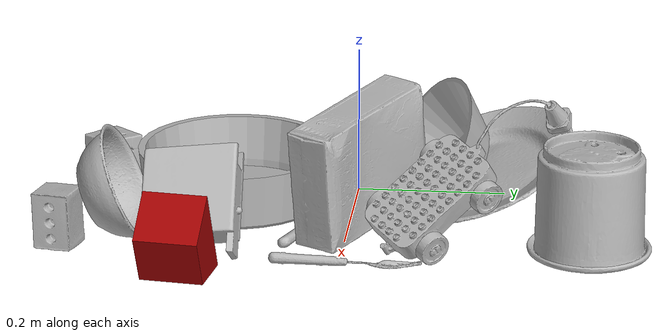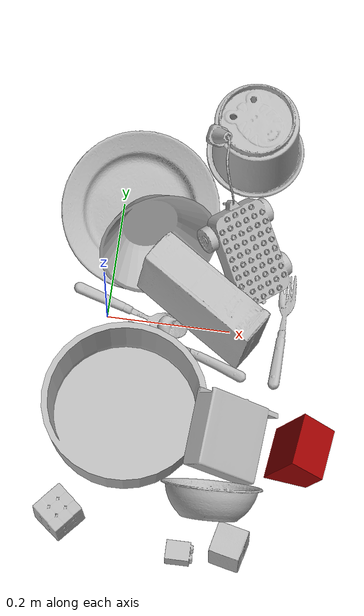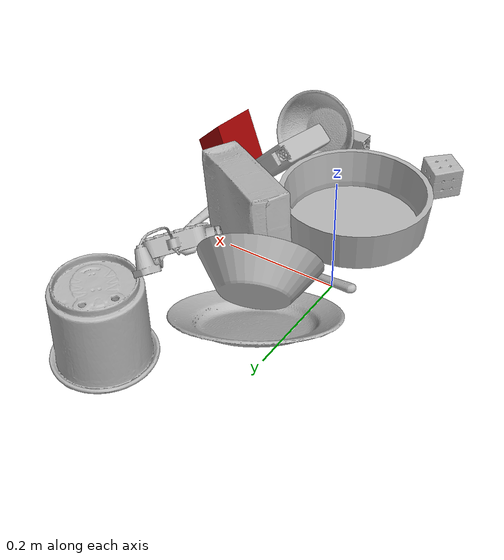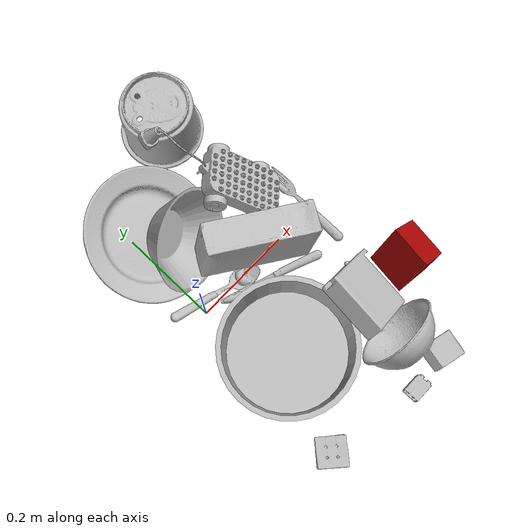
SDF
<sdf version="1.4">
  <world name="default">
    <light name="light1" type="point">
      <pose>0 0 1 0 0 0</pose>
      <diffuse>3 3 3 1</diffuse>
      <specular>3 3 3 1</specular>
    </light>
    <light name="light2" type="point">
      <pose>0 0.5 2 0 0 0</pose>
      <diffuse>1 1 1 1</diffuse>
      <specular>1 1 1 1</specular>
    </light>
    <light name="light3" type="point">
      <pose>0 0.5 2 0 0 0</pose>
      <diffuse>3 3 3 1</diffuse>
      <specular>3 3 3 1</specular>
    </light>
    <scene>
      <ambient>0.7 0.7 0.7</ambient>
    </scene>
    <model name="plate1">
      <link name="link_plate1">
        <collision name="default">
          <geometry>
            <mesh>
              <uri>model://pan_tefal/collision_meshes/collision.obj</uri>
              <scale>1.0 1.0 1.0</scale>
            </mesh>
          </geometry>
          <surface>
            <friction>
              <ode>
                <mu>0.5</mu>
                <mu2>0.5</mu2>
              </ode>
            </friction>
          <contact>
        <ode>
            <max_vel>0</max_vel>
            <min_depth>0.0001</min_depth>
            <kp>1e8</kp>
        </ode>
    </contact></surface>
        </collision>
        <visual name="default">
          <geometry>
            <mesh>
              <uri>model://pan_tefal/visual_meshes/visual.dae</uri>
              <scale>1.0 1.0 1.0</scale>
            </mesh>
          </geometry>
        </visual>
        <inertial>
          <mass>0.7575002908706665</mass>
          <pose>-0.00018002181604970247 3.278869189671241e-05 -0.00851493701338768 0.0008190213215647545 -0.0003301469994364688 -0.3318472895374236</pose>
          <inertia>
            <ixx>0.0052289874</ixx>
            <iyy>0.0052627004</iyy>
            <izz>0.009625561</izz>
            <ixy>0</ixy>
            <ixz>0</ixz>
            <iyz>0</iyz>
          </inertia>
        </inertial>
      </link>
      <pose>0.05217326059937477 -0.16270890831947327 0.03804999962449074 -5.309817482792166e-09 1.6356493300923307e-08 0.8514206963162857</pose>
    </model>
    <model name="plate2">
      <link name="link_plate2">
        <collision name="default">
          <geometry>
            <mesh>
              <uri>model://plate/collision_meshes/collision.obj</uri>
              <scale>1.0 1.0 1.0</scale>
            </mesh>
          </geometry>
          <surface>
            <friction>
              <ode>
                <mu>0.5</mu>
                <mu2>0.5</mu2>
              </ode>
            </friction>
          <contact>
        <ode>
            <max_vel>0</max_vel>
            <min_depth>0.0001</min_depth>
            <kp>1e8</kp>
        </ode>
    </contact></surface>
        </collision>
        <visual name="default">
          <geometry>
            <mesh>
              <uri>model://plate/visual_meshes/visual.dae</uri>
              <scale>1.0 1.0 1.0</scale>
            </mesh>
          </geometry>
        </visual>
        <inertial>
          <mass>0.24305373430252075</mass>
          <pose>-0.0006044657784514129 0.0002782582014333457 -0.0010561988456174731 0.0022187349237576767 -0.0032255124479001144 0.4526250186623527</pose>
          <inertia>
            <ixx>0.00113701</ixx>
            <iyy>0.0011261352</iyy>
            <izz>0.0022238225</izz>
            <ixy>0</ixy>
            <ixz>0</ixz>
            <iyz>0</iyz>
          </inertia>
        </inertial>
      </link>
      <pose>0.02974129095673561 0.17403334379196167 0.04556697979569435 0.050879418475349714 0.4210557248935261 -0.8875806964664745</pose>
    </model>
    <model name="bowl1">
      <link name="link_bowl1">
        <collision name="default">
          <geometry>
            <mesh>
              <uri>model://bowl/collision_meshes/collision.obj</uri>
              <scale>1.0 1.0 1.0</scale>
            </mesh>
          </geometry>
          <surface>
            <friction>
              <ode>
                <mu>0.5</mu>
                <mu2>0.5</mu2>
              </ode>
            </friction>
          <contact>
        <ode>
            <max_vel>0</max_vel>
            <min_depth>0.0001</min_depth>
            <kp>1e8</kp>
        </ode>
    </contact></surface>
        </collision>
        <visual name="default">
          <geometry>
            <mesh>
              <uri>model://bowl/visual_meshes/visual.dae</uri>
              <scale>1.0 1.0 1.0</scale>
            </mesh>
          </geometry>
        </visual>
        <inertial>
          <mass>0.08028676360845566</mass>
          <pose>0.00020445045083761215 -0.0010302026057615876 -0.0008042661938816309 -0.015764207515600946 0.014546645366850262 0.7140316236369888</pose>
          <inertia>
            <ixx>0.00018442512</ixx>
            <iyy>0.00018030431</iyy>
            <izz>0.0003102665</izz>
            <ixy>0</ixy>
            <ixz>0</ixz>
            <iyz>0</iyz>
          </inertia>
        </inertial>
      </link>
      <pose>0.2087073028087616 -0.306907594203949 0.06587545573711395 1.1933310759361166 0.09289970019568039 3.1316935837720568</pose>
    </model>
    <model name="bowl2">
      <link name="link_bowl2">
        <collision name="default">
          <geometry>
            <mesh>
              <uri>model://bowl_a/collision_meshes/collision.obj</uri>
              <scale>1.0 1.0 1.0</scale>
            </mesh>
          </geometry>
          <surface>
            <friction>
              <ode>
                <mu>0.5</mu>
                <mu2>0.5</mu2>
              </ode>
            </friction>
          <contact>
        <ode>
            <max_vel>0</max_vel>
            <min_depth>0.0001</min_depth>
            <kp>1e8</kp>
        </ode>
    </contact></surface>
        </collision>
        <visual name="default">
          <geometry>
            <mesh>
              <uri>model://bowl_a/visual_meshes/visual.dae</uri>
              <scale>1.0 1.0 1.0</scale>
            </mesh>
          </geometry>
        </visual>
        <inertial>
          <mass>0.2016693353652954</mass>
          <pose>0.000278673687716946 4.731108856503852e-05 -0.0013765295734629035 -0.0009805301894988984 -0.0010938186520021772 -0.19123883274053055</pose>
          <inertia>
            <ixx>0.00057416206</ixx>
            <iyy>0.000577687</iyy>
            <izz>0.0010211696</izz>
            <ixy>0</ixy>
            <ixz>0</ixz>
            <iyz>0</iyz>
          </inertia>
        </inertial>
      </link>
      <pose>0.06023215875029564 0.1243751123547554 0.077445849776268 0.5603810926956745 -0.9631572818458112 1.3346761593209187</pose>
    </model>
    <model name="silverware1">
      <link name="link_silverware1">
        <collision name="default">
          <geometry>
            <mesh>
              <uri>model://spoon/collision_meshes/collision.obj</uri>
              <scale>1.0 1.0 1.0</scale>
            </mesh>
          </geometry>
          <surface>
            <friction>
              <ode>
                <mu>0.5</mu>
                <mu2>0.5</mu2>
              </ode>
            </friction>
          <contact>
        <ode>
            <max_vel>0</max_vel>
            <min_depth>0.0001</min_depth>
            <kp>1e8</kp>
        </ode>
    </contact></surface>
        </collision>
        <visual name="default">
          <geometry>
            <mesh>
              <uri>model://spoon/visual_meshes/visual.dae</uri>
              <scale>1.0 1.0 1.0</scale>
            </mesh>
          </geometry>
        </visual>
        <inertial>
          <mass>0.023438503965735435</mass>
          <pose>-0.005526317749172449 -0.0016034176805987954 -0.000727164966519922 0.03521671071703309 -0.03906584129558259 0.006150610048623938</pose>
          <inertia>
            <ixx>1.3036873e-06</ixx>
            <iyy>8.918272e-05</iyy>
            <izz>8.982564e-05</izz>
            <ixy>0</ixy>
            <ixz>0</ixz>
            <iyz>0</iyz>
          </inertia>
        </inertial>
      </link>
      <pose>0.0376242995262146 0.011502615176141262 0.020970584824681282 0.062137731270596894 0.2481839470236354 -0.22801962767351502</pose>
    </model>
    <model name="box1">
      <link name="link_box1">
        <collision name="default">
          <geometry>
            <mesh>
              <uri>model://cracker_box/collision_meshes/collision.obj</uri>
              <scale>1.0 1.0 1.0</scale>
            </mesh>
          </geometry>
          <surface>
            <friction>
              <ode>
                <mu>0.5</mu>
                <mu2>0.5</mu2>
              </ode>
            </friction>
          <contact>
        <ode>
            <max_vel>0</max_vel>
            <min_depth>0.0001</min_depth>
            <kp>1e8</kp>
        </ode>
    </contact></surface>
        </collision>
        <visual name="default">
          <geometry>
            <mesh>
              <uri>model://cracker_box/visual_meshes/visual.dae</uri>
              <scale>1.0 1.0 1.0</scale>
            </mesh>
          </geometry>
        </visual>
        <inertial>
          <mass>3.1733922958374023</mass>
          <pose>0.0009464119793847203 0.00025434247800149024 -0.0017029535956680775 -0.00031620768891544627 -0.011106485874643508 0.0025467963987026074</pose>
          <inertia>
            <ixx>0.008071693</ixx>
            <iyy>0.013327951</iyy>
            <izz>0.01902021</izz>
            <ixy>0</ixy>
            <ixz>0</ixz>
            <iyz>0</iyz>
          </inertia>
        </inertial>
      </link>
      <pose>0.1543935090303421 0.016869472339749336 0.09297211468219757 1.5735012092357412 -0.11909847884379897 2.591668576728895</pose>
    </model>
    <model name="box2">
      <link name="link_box2">
        <collision name="default">
          <geometry>
            <mesh>
              <uri>model://rubiks_cube/collision_meshes/collision.obj</uri>
              <scale>1.0 1.0 1.0</scale>
            </mesh>
          </geometry>
          <surface>
            <friction>
              <ode>
                <mu>0.5</mu>
                <mu2>0.5</mu2>
              </ode>
            </friction>
          <contact>
        <ode>
            <max_vel>0</max_vel>
            <min_depth>0.0001</min_depth>
            <kp>1e8</kp>
        </ode>
    </contact></surface>
        </collision>
        <visual name="default">
          <geometry>
            <mesh>
              <uri>model://rubiks_cube/visual_meshes/visual.dae</uri>
              <scale>1.0 1.0 1.0</scale>
            </mesh>
          </geometry>
        </visual>
        <inertial>
          <mass>0.15184316039085388</mass>
          <pose>2.6721041649580002e-05 5.2569666877388954e-05 -7.264316536748083e-06 -0.0546734747968529 -0.09813870099197174 -0.03445517010401606</pose>
          <inertia>
            <ixx>8.390353e-05</ixx>
            <iyy>8.351226e-05</iyy>
            <izz>8.459882e-05</izz>
            <ixy>0</ixy>
            <ixz>0</ixz>
            <iyz>0</iyz>
          </inertia>
        </inertial>
      </link>
      <pose>-0.027136877179145813 -0.34628093242645264 0.02970021218061447 -1.6127566865566259 -0.02065239832221161 0.8623297070853648</pose>
    </model>
    <model name="cup1">
      <link name="link_cup1">
        <collision name="default">
          <geometry>
            <mesh>
              <uri>model://f_cups/collision_meshes/collision.obj</uri>
              <scale>2.0 2.0 2.0</scale>
            </mesh>
          </geometry>
          <surface>
            <friction>
              <ode>
                <mu>0.5</mu>
                <mu2>0.5</mu2>
              </ode>
            </friction>
          <contact>
        <ode>
            <max_vel>0</max_vel>
            <min_depth>0.0001</min_depth>
            <kp>1e8</kp>
        </ode>
    </contact></surface>
        </collision>
        <visual name="default">
          <geometry>
            <mesh>
              <uri>model://f_cups/visual_meshes/visual.dae</uri>
              <scale>2.0 2.0 2.0</scale>
            </mesh>
          </geometry>
        </visual>
        <inertial>
          <mass>0.31799542903900146</mass>
          <pose>-0.006342939101159573 -0.0012480145087465644 -0.00731107359752059 0.7862267301708457 -0.2607925342729672 -0.18237300859269054</pose>
          <inertia>
            <ixx>0.0011956966</ixx>
            <iyy>0.0012542997</iyy>
            <izz>0.001305761</izz>
            <ixy>0</ixy>
            <ixz>0</ixz>
            <iyz>0</iyz>
          </inertia>
        </inertial>
      </link>
      <pose>0.2014167606830597 0.31827834248542786 0.07260800898075104 -3.1415887792907053 1.0744507706400085e-06 1.5289121368864718</pose>
    </model>
    <model name="silverware2">
      <link name="link_silverware2">
        <collision name="default">
          <geometry>
            <mesh>
              <uri>model://knife/collision_meshes/collision.obj</uri>
              <scale>1.0 1.0 1.0</scale>
            </mesh>
          </geometry>
          <surface>
            <friction>
              <ode>
                <mu>0.5</mu>
                <mu2>0.5</mu2>
              </ode>
            </friction>
          <contact>
        <ode>
            <max_vel>0</max_vel>
            <min_depth>0.0001</min_depth>
            <kp>1e8</kp>
        </ode>
    </contact></surface>
        </collision>
        <visual name="default">
          <geometry>
            <mesh>
              <uri>model://knife/visual_meshes/visual.dae</uri>
              <scale>1.0 1.0 1.0</scale>
            </mesh>
          </geometry>
        </visual>
        <inertial>
          <mass>0.01713745854794979</mass>
          <pose>-0.02378525771200657 0.0015275123296305537 5.062021591584198e-05 0.07305753061421462 0.017248419855317693 -0.007409818535045194</pose>
          <inertia>
            <ixx>4.864306e-07</ixx>
            <iyy>6.583934e-05</iyy>
            <izz>6.5996e-05</izz>
            <ixy>0</ixy>
            <ixz>0</ixz>
            <iyz>0</iyz>
          </inertia>
        </inertial>
      </link>
      <pose>0.1341763734817505 -0.044548824429512024 0.006219544913619757 2.7763801689881937 0.018242974873238078 2.8084634663173866</pose>
    </model>
    <model name="silverware3">
      <link name="link_silverware3">
        <collision name="default">
          <geometry>
            <mesh>
              <uri>model://fork/collision_meshes/collision.obj</uri>
              <scale>1.0 1.0 1.0</scale>
            </mesh>
          </geometry>
          <surface>
            <friction>
              <ode>
                <mu>0.5</mu>
                <mu2>0.5</mu2>
              </ode>
            </friction>
          <contact>
        <ode>
            <max_vel>0</max_vel>
            <min_depth>0.0001</min_depth>
            <kp>1e8</kp>
        </ode>
    </contact></surface>
        </collision>
        <visual name="default">
          <geometry>
            <mesh>
              <uri>model://fork/visual_meshes/visual.dae</uri>
              <scale>1.0 1.0 1.0</scale>
            </mesh>
          </geometry>
        </visual>
        <inertial>
          <mass>0.012323527596890926</mass>
          <pose>-0.029570043087005615 0.00046588233090005815 0.0003218861238565296 -0.013551145261099908 -0.01097783717976447 0.01445390335153306</pose>
          <inertia>
            <ixx>4.3200933e-07</ixx>
            <iyy>3.2173175e-05</iyy>
            <izz>3.236641e-05</izz>
            <ixy>0</ixy>
            <ixz>0</ixz>
            <iyz>0</iyz>
          </inertia>
        </inertial>
      </link>
      <pose>0.2845897972583771 0.009161090478301048 0.005702892784029245 -0.1800151638415485 0.025052783696158105 1.539722482505086</pose>
    </model>
    <model name="toy1">
      <link name="link_toy1">
        <collision name="default">
          <geometry>
            <mesh>
              <uri>model://foam_brick/collision_meshes/collision.obj</uri>
              <scale>1.0 1.0 1.0</scale>
            </mesh>
          </geometry>
          <surface>
            <friction>
              <ode>
                <mu>0.5</mu>
                <mu2>0.5</mu2>
              </ode>
            </friction>
          <contact>
        <ode>
            <max_vel>0</max_vel>
            <min_depth>0.0001</min_depth>
            <kp>1e8</kp>
        </ode>
    </contact></surface>
        </collision>
        <visual name="default">
          <geometry>
            <mesh>
              <uri>model://foam_brick/visual_meshes/visual.dae</uri>
              <scale>1.0 1.0 1.0</scale>
            </mesh>
          </geometry>
        </visual>
        <inertial>
          <mass>0.22379855811595917</mass>
          <pose>-0.00025224717683158815 0.0003458436403889209 -0.0002532101352699101 -0.29401565582258504 0.017274431815567964 -0.0007449878256007176</pose>
          <inertia>
            <ixx>9.775939e-05</ixx>
            <iyy>0.00015607789</iyy>
            <izz>0.00015806146</izz>
            <ixy>0</ixy>
            <ixz>0</ixz>
            <iyz>0</iyz>
          </inertia>
        </inertial>
      </link>
      <pose>0.24627012014389038 -0.3693338930606842 0.038308460265398026 2.0091695349691805 1.5521708605447715 1.7833461446203673</pose>
    </model>
    <model name="toy2">
      <link name="link_toy2">
        <collision name="default">
          <geometry>
            <mesh>
              <uri>model://g_lego_duplo/collision_meshes/collision.obj</uri>
              <scale>1.0 1.0 1.0</scale>
            </mesh>
          </geometry>
          <surface>
            <friction>
              <ode>
                <mu>0.5</mu>
                <mu2>0.5</mu2>
              </ode>
            </friction>
          <contact>
        <ode>
            <max_vel>0</max_vel>
            <min_depth>0.0001</min_depth>
            <kp>1e8</kp>
        </ode>
    </contact></surface>
        </collision>
        <visual name="default">
          <geometry>
            <mesh>
              <uri>model://g_lego_duplo/visual_meshes/visual.dae</uri>
              <scale>1.0 1.0 1.0</scale>
            </mesh>
          </geometry>
        </visual>
        <inertial>
          <mass>0.5124852657318115</mass>
          <pose>-0.05004769191145897 0.0017554633086547256 0.003880675183609128 0.010962987419080987 0.0381082502855883 -0.09653031806986456</pose>
          <inertia>
            <ixx>0.0007425969</ixx>
            <iyy>0.0022451086</iyy>
            <izz>0.0028087152</izz>
            <ixy>0</ixy>
            <ixz>0</ixz>
            <iyz>0</iyz>
          </inertia>
        </inertial>
      </link>
      <pose>0.1909119039773941 0.15827897191047668 0.10494276881217957 0.2971359374987434 -0.6361762422562449 2.1150420440525513</pose>
    </model>
    <model name="toy3">
      <link name="link_toy3">
        <collision name="default">
          <geometry>
            <mesh>
              <uri>model://nine_hole_peg_test/collision_meshes/collision.obj</uri>
              <scale>1.0 1.0 1.0</scale>
            </mesh>
          </geometry>
          <surface>
            <friction>
              <ode>
                <mu>0.5</mu>
                <mu2>0.5</mu2>
              </ode>
            </friction>
          <contact>
        <ode>
            <max_vel>0</max_vel>
            <min_depth>0.0001</min_depth>
            <kp>1e8</kp>
        </ode>
    </contact></surface>
        </collision>
        <visual name="default">
          <geometry>
            <mesh>
              <uri>model://nine_hole_peg_test/visual_meshes/visual.dae</uri>
              <scale>1.0 1.0 1.0</scale>
            </mesh>
          </geometry>
        </visual>
        <inertial>
          <mass>0.8364987969398499</mass>
          <pose>-0.004617386497557163 -0.009647614322602749 2.6460691515239887e-05 -0.0014666793226822761 0.000719418076932787 -0.634241593386854</pose>
          <inertia>
            <ixx>0.0013080036</ixx>
            <iyy>0.0012212693</iyy>
            <izz>0.0022920077</izz>
            <ixy>0</ixy>
            <ixz>0</ixz>
            <iyz>0</iyz>
          </inertia>
        </inertial>
      </link>
      <pose>0.2275010347366333 -0.1911962628364563 0.0588887520134449 -2.346199742618634 -0.12797687422413298 1.4962918177928202</pose>
    </model>
    <model name="toy4">
      <link name="link_toy4">
        <collision name="default">
          <geometry>
            <mesh>
              <uri>model://b_lego_duplo/collision_meshes/collision.obj</uri>
              <scale>1.0 1.0 1.0</scale>
            </mesh>
          </geometry>
          <surface>
            <friction>
              <ode>
                <mu>0.5</mu>
                <mu2>0.5</mu2>
              </ode>
            </friction>
          <contact>
        <ode>
            <max_vel>0</max_vel>
            <min_depth>0.0001</min_depth>
            <kp>1e8</kp>
        </ode>
    </contact></surface>
        </collision>
        <visual name="default">
          <geometry>
            <mesh>
              <uri>model://b_lego_duplo/visual_meshes/visual.dae</uri>
              <scale>1.0 1.0 1.0</scale>
            </mesh>
          </geometry>
        </visual>
        <inertial>
          <mass>0.0316849946975708</mass>
          <pose>-0.00011053055641241372 -9.15226701181382e-06 0.0019294292433187366 -0.03749472548528336 -0.026354304906346077 0.4518915128408031</pose>
          <inertia>
            <ixx>6.4845735e-06</ixx>
            <iyy>6.5281647e-06</iyy>
            <izz>5.777544e-06</izz>
            <ixy>0</ixy>
            <ixz>0</ixz>
            <iyz>0</iyz>
          </inertia>
        </inertial>
      </link>
      <pose>0.16963206231594086 -0.38273876905441284 0.016121743246912956 1.572391050807735 -0.012060755838648247 1.5838635888946662</pose>
    </model>
    <model name="toy5">
      <link name="link_toy5">
        <collision name="default">
          <geometry>
            <mesh>
              <uri>model://prism/collision_meshes/collision.obj</uri>
              <scale>1.0 1.0 1.0</scale>
            </mesh>
          </geometry>
          <surface>
            <friction>
              <ode>
                <mu>0.5</mu>
                <mu2>0.5</mu2>
              </ode>
            </friction>
          <contact>
        <ode>
            <max_vel>0</max_vel>
            <min_depth>0.0001</min_depth>
            <kp>1e8</kp>
        </ode>
    </contact></surface>
        </collision>
        <visual name="default">
          <geometry>
            <mesh>
              <uri>model://prism/visual_meshes/visual.dae</uri>
              <scale>1.0 1.0 1.0</scale>
            </mesh>
          </geometry>
        </visual>
        <inertial>
          <mass>0.34586653113365173</mass>
          <pose>-9.853597293840721e-05 -4.96157269935793e-07 -0.0033869100734591484 0.0 0.006559180766136186 0.0</pose>
          <inertia>
            <ixx>0.00031214024</ixx>
            <iyy>0.00037722557</iyy>
            <izz>0.00046205617</izz>
            <ixy>0</ixy>
            <ixz>0</ixz>
            <iyz>0</iyz>
          </inertia>
        </inertial>
      </link>
      <pose>0.34171345829963684 -0.20084811747074127 0.042704083025455475 3.14159228759288 -1.1941376957197034 -0.12062079708316024</pose>
    </model>
  <physics type="ode">
      <max_contacts>50</max_contacts>
      <ode>
        <solver>
          <type>quick</type>
          <iters>75</iters>
        </solver>
        <constraints>
          <contact_max_correcting_vel>0</contact_max_correcting_vel>
          <contact_surface_layer>0</contact_surface_layer>
        </constraints>
      </ode>
    </physics></world>
</sdf>
